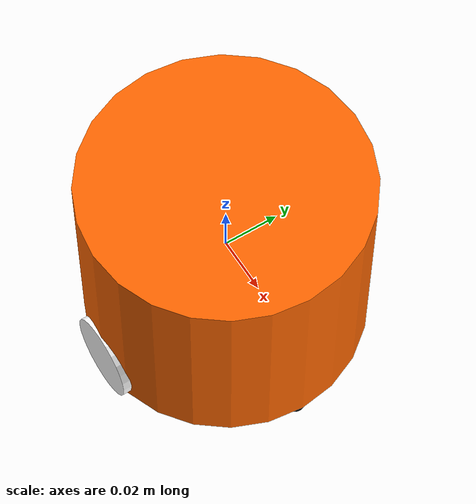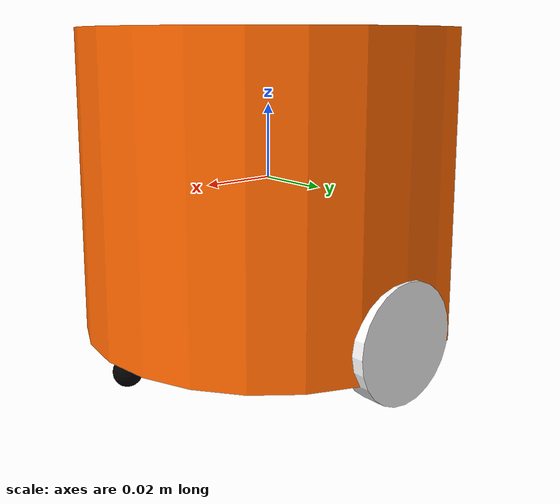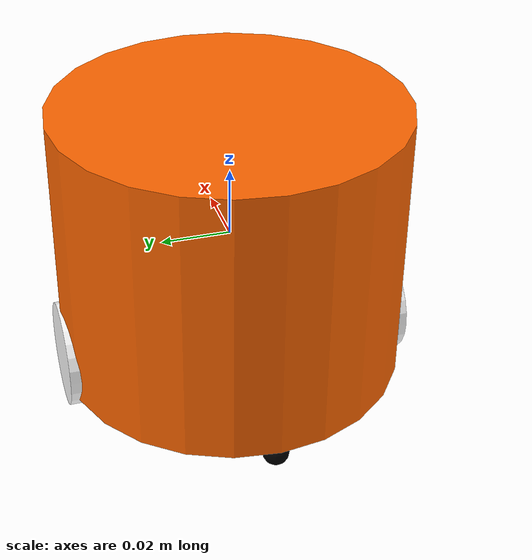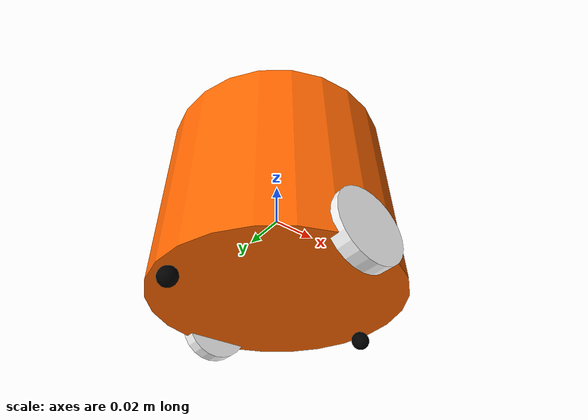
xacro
<?xml version="1.0"?>
<robot xmlns:xacro="http://www.ros.org/wiki/xacro" name="mbot">

  <!-- Import the macros for inertia and collision matrices -->
  <xacro:include filename="$(find mbot_description)/urdf/xacro/inertia_and_collision_macros.xacro"/>
  <!-- /////////////////////////////////////    COLOR    ///////////////////////////////////////////// -->
  <material name="Black">
      <color rgba="0 0 0 1"/>
  </material>
  <material name="White">
      <color rgba="1 1 1 0.95"/>
  </material>
  <material name="Blue">
      <color rgba="0 0 1 1"/>
  </material>
  <material name="Yellow">
      <color rgba="1 0.4 0 1"/>
  </material>
  <!-- Base link -->
  <link name="base_link">
    <visual>
      <origin xyz="0 0 0" rpy="0 0 0"/>
      <geometry>
        <cylinder length="0.08" radius="0.05"/>
      </geometry>
      <material name="Yellow"/>
    </visual>
    <collision>
      <origin xyz="0 0 0" rpy="0 0 0"/>
      <geometry>
        <cylinder length="0.08" radius="0.05"/>
      </geometry>
      <surface>
        <ode>
          <mu>1</mu>
          <mu2>1</mu2>
        </ode>
      </surface>
    </collision>
    <xacro:cylinder_inertial_matrix m="1.0" r="0.05" h="0.04"/>
  </link>

  <gazebo reference="base_link">
            <material>Gazebo/Yellow</material>
  </gazebo>

  <!-- Left wheel link -->
  <link name="left_wheel_link">
    <visual>
      <origin xyz="0 0 0" rpy="1.5707 0 0" />
      <geometry>
        <cylinder radius="0.015" length="0.00625"/>
      </geometry>
      <material name="White"/>
    </visual>
    <collision>
      <origin xyz="0 0 0" rpy="1.5707 0 0" />
      <geometry>
        <cylinder radius="0.015" length="0.00625"/>
      </geometry>
    </collision>
    <xacro:cylinder_inertial_matrix m="0.1" r="0.015" h="0.00625"/>
  </link>

  <joint name="left_wheel_joint" type="continuous">
      <origin xyz="0 0.0475 -0.0325" rpy="0 0 0"/>
      <parent link="base_link"/>
      <child link="left_wheel_link"/>
      <axis xyz="0 1 0"/>
  </joint>
  <!-- Right wheel link -->
  <link name="right_wheel_link">
    <visual>
      <origin xyz="0 0 0" rpy="1.5707 0 0" />
      <geometry>
        <cylinder radius="0.015" length="0.00625"/>
      </geometry>
      <material name="White"/>
    </visual>
    <collision>
      <origin xyz="0 0 0" rpy="1.5707 0 0" />
      <geometry>
        <cylinder radius="0.015" length="0.00625"/>
      </geometry>
    </collision>
    <xacro:cylinder_inertial_matrix m="0.1" r="0.015" h="0.00625"/>
  </link>

  <joint name="right_wheel_joint" type="continuous">
      <origin xyz="0 -0.0475 -0.0325" rpy="0 0 0"/>
      <parent link="base_link"/>
      <child link="right_wheel_link"/>
      <axis xyz="0 1 0"/>
  </joint>
  <!-- Front caster link -->
  <link name="front_caster_link">
    <visual>
      <origin xyz="0 0 0" rpy="0 0 0" />
      <geometry>
        <sphere radius="0.00375"/>
      </geometry>
      <material name="Black"/>
    </visual>
    <collision>
      <origin xyz="0 0 0" rpy="0 0 0" />
      <geometry>
        <sphere radius="0.00375"/>
      </geometry>
    </collision>
    <xacro:sphere_inertial_matrix m="0.05" r="0.00375"/>
  </link>

  <joint name="front_caster_joint" type="fixed">
      <origin xyz="0.045 0 -0.04375" rpy="0 0 0"/>
      <parent link="base_link"/>
      <child link="front_caster_link"/>
  </joint>
  <!-- Back caster link -->
  <link name="back_caster_link">
    <visual>
      <origin xyz="0 0 0" rpy="0 0 0" />
      <geometry>
        <sphere radius="0.00375"/>
      </geometry>
      <material name="Black"/>
    </visual>
    <collision>
      <origin xyz="0 0 0" rpy="0 0 0" />
      <geometry>
        <sphere radius="0.00375"/>
      </geometry>
    </collision>
    <xacro:sphere_inertial_matrix m="0.05" r="0.00375"/>
  </link>

  <joint name="back_caster_joint" type="fixed">
      <origin xyz="-0.045 0 -0.04375" rpy="0 0 0"/>
      <parent link="base_link"/>
      <child link="back_caster_link"/>
  </joint>

  <gazebo>
    <plugin name="differential_drive_controller" filename="libgazebo_ros_diff_drive.so">
      <updateRate>100</updateRate>
      <legacyMode>false</legacyMode>
      <leftJoint>left_wheel_joint</leftJoint>
      <rightJoint>right_wheel_joint</rightJoint>
      <publishWheelTF>true</publishWheelTF>
      <publishWheelJointState>true</publishWheelJointState>
      <robotNamespace>/mbot</robotNamespace>
      <commandTopic>cmd_vel</commandTopic>
      <publishOdom>true</publishOdom>
      <odometryTopic>odom</odometryTopic>
      <odometryFrame>odom</odometryFrame>
      <odometrySource>1</odometrySource>
      <robotBaseFrame>base_link</robotBaseFrame>
      <wheelSeparation>0.095</wheelSeparation>
      <wheelDiameter>0.03</wheelDiameter>
      <wheelAcceleration>1.0</wheelAcceleration>
      <wheelTorque>10.0</wheelTorque>
    </plugin>
  </gazebo>
</robot>
